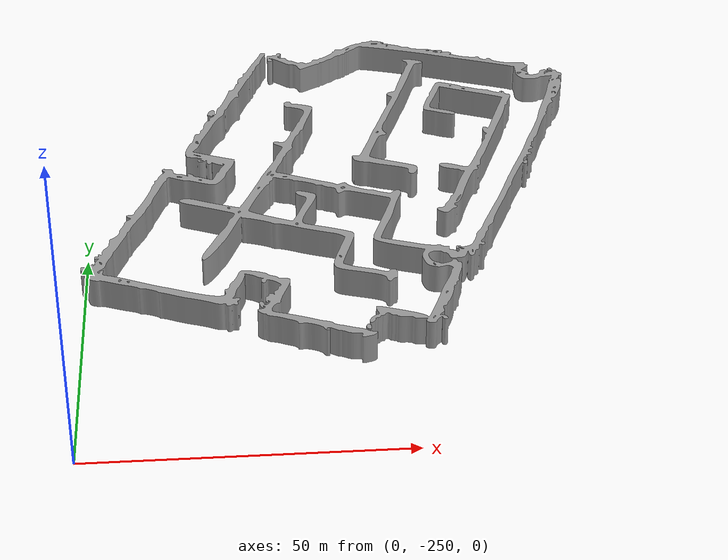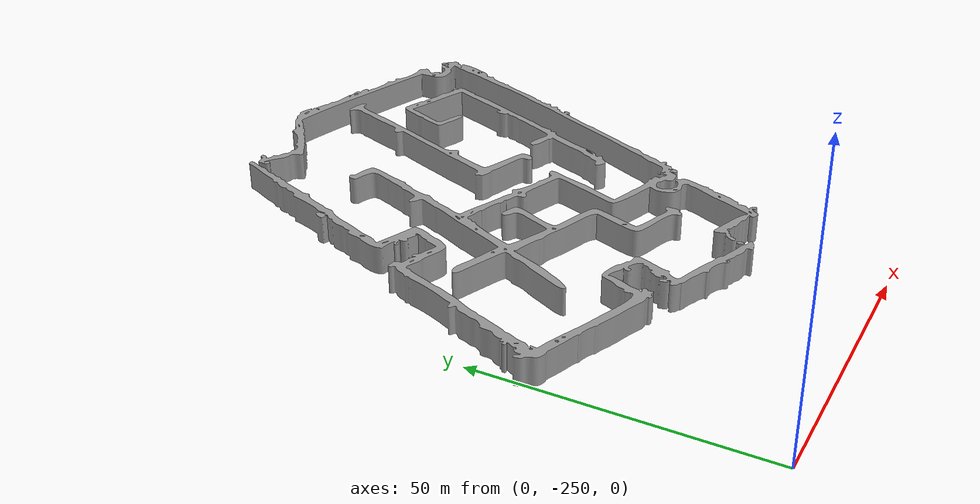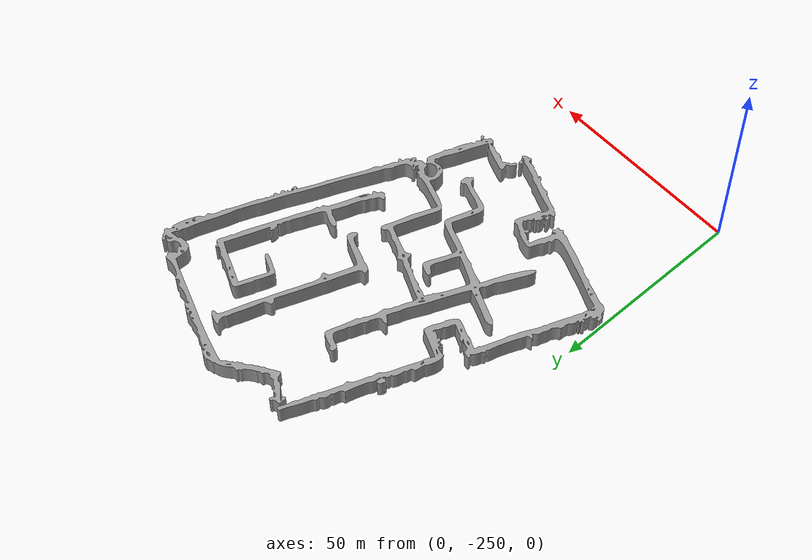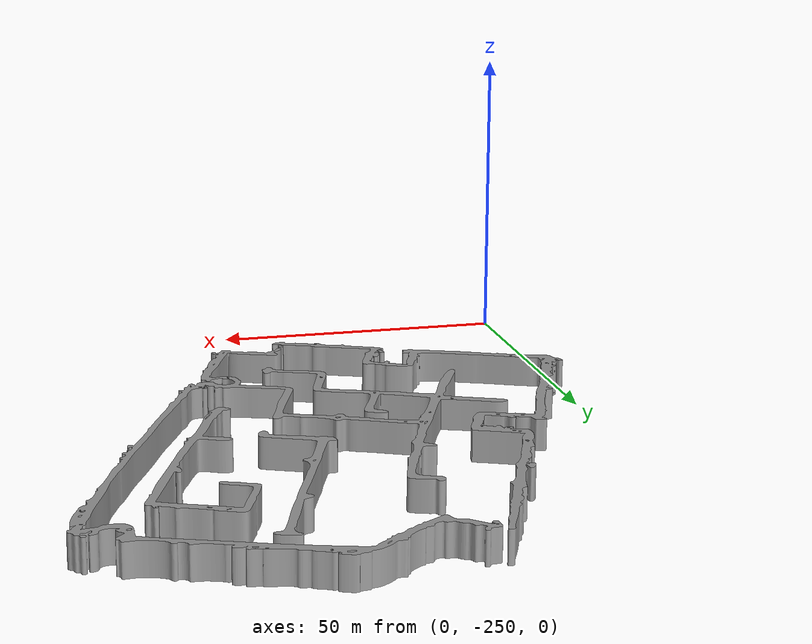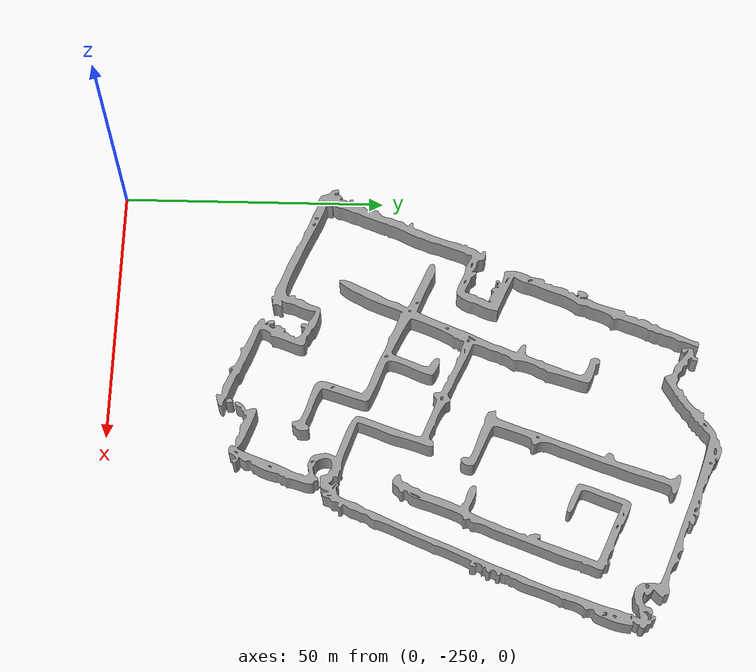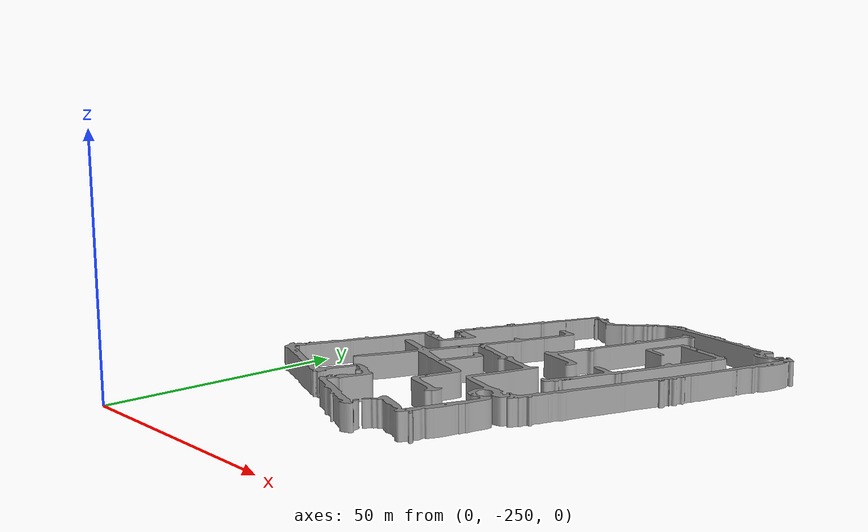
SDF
<?xml version='1.0'?>
<sdf version='1.6'>
 <model name='arena_rtc_ws22_world'>
      <link name='link_0'>
        <pose frame=''>1e-06 -0 0 0 -0 0</pose>
        <inertial>
          <mass>1e+09</mass>
          <inertia>
            <ixx>1e+09</ixx>
            <ixy>1e+09</ixy>
            <ixz>1e+09</ixz>
            <iyy>1e+09</iyy>
            <iyz>1e+09</iyz>
            <izz>1e+09</izz>
          </inertia>
          <pose frame=''>0 0 0 0 -0 0</pose>
        </inertial>
        <gravity>1</gravity>
        <self_collide>0</self_collide>
        <kinematic>0</kinematic>
        <visual name='visual'>
          <pose frame=''>0 0 0 0 -0 0</pose>
          <geometry>
            <mesh>
              <uri>model://arena_rtc_ws22/meshes/arena_ws22.stl</uri>
              <scale>1 1 1</scale>
            </mesh>
          </geometry>
          <material>
            <lighting>1</lighting>
            <script>
              <uri>file://media/materials/scripts/gazebo.material</uri>
              <name>Gazebo/Grey</name>
            </script>
            <ambient>0.3 0.3 0.3 1</ambient>
            <diffuse>0.7 0.7 0.7 1</diffuse>
            <specular>0.01 0.01 0.01 1</specular>
            <emissive>0 0 0 1</emissive>
            <shader type='vertex'>
              <normal_map>__default__</normal_map>
            </shader>
          </material>
          <cast_shadows>1</cast_shadows>
          <transparency>0</transparency>
        </visual>
        <collision name='collision'>
          <laser_retro>0</laser_retro>
          <max_contacts>10</max_contacts>
          <pose frame=''>0 0 0 0 -0 0</pose>
          <geometry>
            <mesh>
             <uri>model://arena_rtc_ws22/meshes/arena_ws22.stl</uri>
              <scale>1 1 1</scale>
            </mesh>
          </geometry>
          <surface>
            <friction>
              <ode>
                <mu>1</mu>
                <mu2>1</mu2>
                <fdir1>0 0 0</fdir1>
                <slip1>0</slip1>
                <slip2>0</slip2>
              </ode>
              <torsional>
                <coefficient>1</coefficient>
                <patch_radius>0</patch_radius>
                <surface_radius>0</surface_radius>
                <use_patch_radius>1</use_patch_radius>
                <ode>
                  <slip>0</slip>
                </ode>
              </torsional>
            </friction>
            <bounce>
              <restitution_coefficient>0</restitution_coefficient>
              <threshold>1e+06</threshold>
            </bounce>
            <contact>
              <collide_without_contact>0</collide_without_contact>
              <collide_without_contact_bitmask>1</collide_without_contact_bitmask>
              <collide_bitmask>1</collide_bitmask>
              <ode>
                <soft_cfm>0</soft_cfm>
                <soft_erp>0.2</soft_erp>
                <kp>10000</kp>
                <kd>1</kd>
                <max_vel>0.01</max_vel>
                <min_depth>0</min_depth>
              </ode>
              <bullet>
                <split_impulse>1</split_impulse>
                <split_impulse_penetration_threshold>-0.01</split_impulse_penetration_threshold>
                <soft_cfm>0</soft_cfm>
                <soft_erp>0.2</soft_erp>
                <kp>10000</kp>
                <kd>1</kd>
              </bullet>
            </contact>
          </surface>
        </collision>
      </link>
      <static>1</static>
      <allow_auto_disable>1</allow_auto_disable>
      <pose frame=''>-70.1836 -30.086 0 0 -0 0</pose>
    </model>
</sdf>
